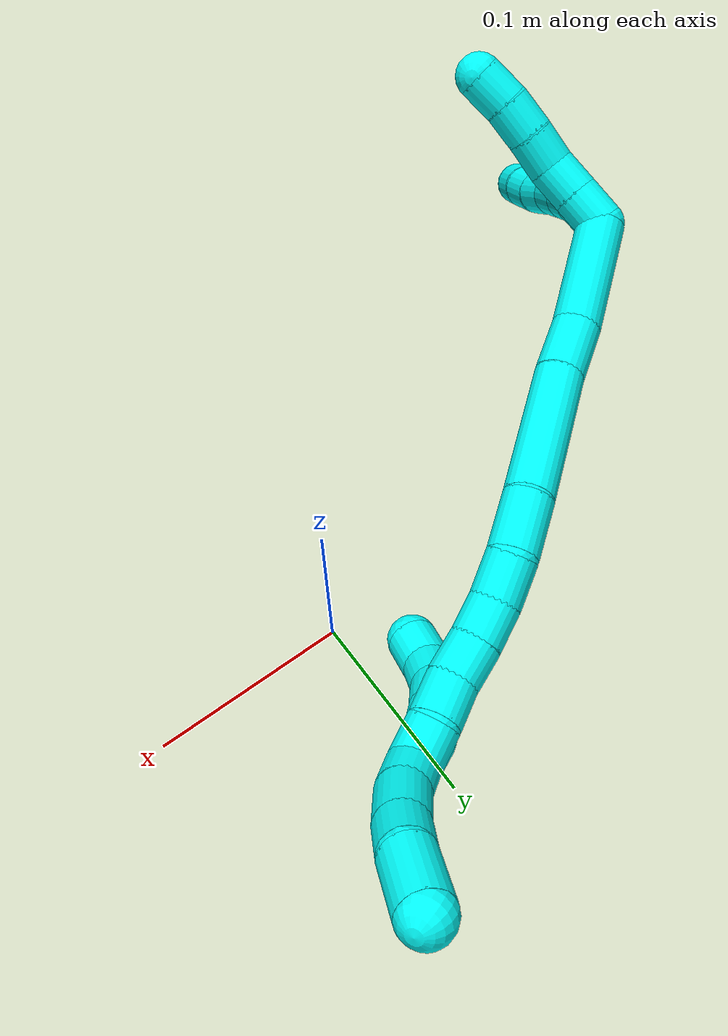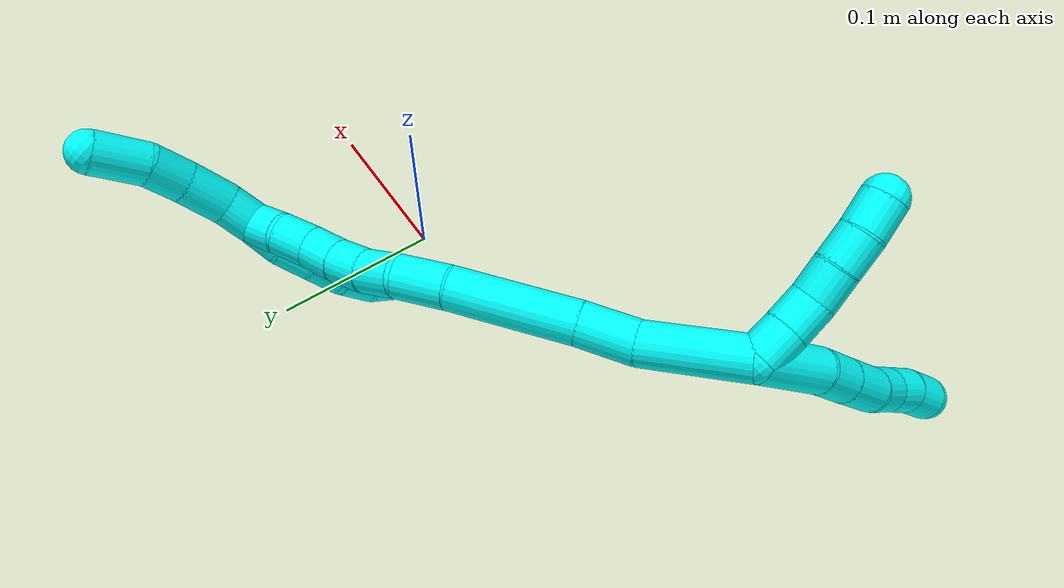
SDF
<sdf version="1.7">
 <world name="default">
  <model name="3">
   <static>0</static>
   <link name="3">
    <collision name="collision-cylinder-e_1_2_8">
     <pose>-0.010146 0.004072 0.0177 -0.226146 -0.509456 0.05912</pose>
     <geometry><cylinder><radius>0.0125</radius><length>0.041608</length></cylinder></geometry>
     <surface>
      <friction><ode><mu>1.16</mu><mu2>1.16</mu2><slip1>0</slip1><slip2>0</slip2></ode></friction>
      <contact><ode><kp>1e+06</kp><kd>1</kd><max_vel>0</max_vel><min_depth>0.001</min_depth></ode></contact>
     </surface>
    </collision>
    <visual name="visual-cylinder-e_1_2_8">
     <pose>-0.010146 0.004072 0.0177 -0.226146 -0.509456 0.05912</pose>
     <geometry><cylinder><radius>0.0125</radius><length>0.041608</length></cylinder></geometry>
     <material><ambient>0.003922 1 0.996078 1</ambient></material>
    </visual>
    <collision name="collision-cylinder-e_2_8_9">
     <pose>-0.024258 0.011783 0.04478 -0.369959 -0.375421 0.071055</pose>
     <geometry><cylinder><radius>0.0125</radius><length>0.02163</length></cylinder></geometry>
     <surface>
      <friction><ode><mu>1.16</mu><mu2>1.16</mu2><slip1>0</slip1><slip2>0</slip2></ode></friction>
      <contact><ode><kp>1e+06</kp><kd>1</kd><max_vel>0</max_vel><min_depth>0.001</min_depth></ode></contact>
     </surface>
    </collision>
    <visual name="visual-cylinder-e_2_8_9">
     <pose>-0.024258 0.011783 0.04478 -0.369959 -0.375421 0.071055</pose>
     <geometry><cylinder><radius>0.0125</radius><length>0.02163</length></cylinder></geometry>
     <material><ambient>0.003922 1 0.996078 1</ambient></material>
    </visual>
    <collision name="collision-cylinder-e_3_9_10">
     <pose>-0.033251 0.020228 0.065568 -0.398853 -0.385796 0.078915</pose>
     <geometry><cylinder><radius>0.0125</radius><length>0.026721</length></cylinder></geometry>
     <surface>
      <friction><ode><mu>1.16</mu><mu2>1.16</mu2><slip1>0</slip1><slip2>0</slip2></ode></friction>
      <contact><ode><kp>1e+06</kp><kd>1</kd><max_vel>0</max_vel><min_depth>0.001</min_depth></ode></contact>
     </surface>
    </collision>
    <visual name="visual-cylinder-e_3_9_10">
     <pose>-0.033251 0.020228 0.065568 -0.398853 -0.385796 0.078915</pose>
     <geometry><cylinder><radius>0.0125</radius><length>0.026721</length></cylinder></geometry>
     <material><ambient>0.003922 1 0.996078 1</ambient></material>
    </visual>
    <collision name="collision-cylinder-e_4_10_11">
     <pose>-0.043207 0.029767 0.0843 -0.573539 -0.514432 0.154832</pose>
     <geometry><cylinder><radius>0.0125</radius><length>0.020034</length></cylinder></geometry>
     <surface>
      <friction><ode><mu>1.16</mu><mu2>1.16</mu2><slip1>0</slip1><slip2>0</slip2></ode></friction>
      <contact><ode><kp>1e+06</kp><kd>1</kd><max_vel>0</max_vel><min_depth>0.001</min_depth></ode></contact>
     </surface>
    </collision>
    <visual name="visual-cylinder-e_4_10_11">
     <pose>-0.043207 0.029767 0.0843 -0.573539 -0.514432 0.154832</pose>
     <geometry><cylinder><radius>0.0125</radius><length>0.020034</length></cylinder></geometry>
     <material><ambient>0.003922 1 0.996078 1</ambient></material>
    </visual>
    <collision name="collision-cylinder-e_5_11_12">
     <pose>-0.053445 0.038006 0.099342 -0.426526 -0.559604 0.12429</pose>
     <geometry><cylinder><radius>0.0125</radius><length>0.020005</length></cylinder></geometry>
     <surface>
      <friction><ode><mu>1.16</mu><mu2>1.16</mu2><slip1>0</slip1><slip2>0</slip2></ode></friction>
      <contact><ode><kp>1e+06</kp><kd>1</kd><max_vel>0</max_vel><min_depth>0.001</min_depth></ode></contact>
     </surface>
    </collision>
    <visual name="visual-cylinder-e_5_11_12">
     <pose>-0.053445 0.038006 0.099342 -0.426526 -0.559604 0.12429</pose>
     <geometry><cylinder><radius>0.0125</radius><length>0.020005</length></cylinder></geometry>
     <material><ambient>0.003922 1 0.996078 1</ambient></material>
    </visual>
    <collision name="collision-cylinder-e_6_12_6">
     <pose>-0.062501 0.044742 0.115752 -0.355715 -0.383907 0.069842</pose>
     <geometry><cylinder><radius>0.0125</radius><length>0.020003</length></cylinder></geometry>
     <surface>
      <friction><ode><mu>1.16</mu><mu2>1.16</mu2><slip1>0</slip1><slip2>0</slip2></ode></friction>
      <contact><ode><kp>1e+06</kp><kd>1</kd><max_vel>0</max_vel><min_depth>0.001</min_depth></ode></contact>
     </surface>
    </collision>
    <visual name="visual-cylinder-e_6_12_6">
     <pose>-0.062501 0.044742 0.115752 -0.355715 -0.383907 0.069842</pose>
     <geometry><cylinder><radius>0.0125</radius><length>0.020003</length></cylinder></geometry>
     <material><ambient>0.003922 1 0.996078 1</ambient></material>
    </visual>
    <collision name="collision-cylinder-e_1_2_13">
     <pose>-0.009855 -0.001596 0.000573 1.22592 -1.40037 -1.06996</pose>
     <geometry><cylinder><radius>0.0125</radius><length>0.02</length></cylinder></geometry>
     <surface>
      <friction><ode><mu>1.16</mu><mu2>1.16</mu2><slip1>0</slip1><slip2>0</slip2></ode></friction>
      <contact><ode><kp>1e+06</kp><kd>1</kd><max_vel>0</max_vel><min_depth>0.001</min_depth></ode></contact>
     </surface>
    </collision>
    <visual name="visual-cylinder-e_1_2_13">
     <pose>-0.009855 -0.001596 0.000573 1.22592 -1.40037 -1.06996</pose>
     <geometry><cylinder><radius>0.0125</radius><length>0.02</length></cylinder></geometry>
     <material><ambient>0.003922 1 0.996078 1</ambient></material>
    </visual>
    <collision name="collision-cylinder-e_2_13_14">
     <pose>-0.029569 -0.004857 0.001321 1.46641 -1.40264 -1.30061</pose>
     <geometry><cylinder><radius>0.0125</radius><length>0.02</length></cylinder></geometry>
     <surface>
      <friction><ode><mu>1.16</mu><mu2>1.16</mu2><slip1>0</slip1><slip2>0</slip2></ode></friction>
      <contact><ode><kp>1e+06</kp><kd>1</kd><max_vel>0</max_vel><min_depth>0.001</min_depth></ode></contact>
     </surface>
    </collision>
    <visual name="visual-cylinder-e_2_13_14">
     <pose>-0.029569 -0.004857 0.001321 1.46641 -1.40264 -1.30061</pose>
     <geometry><cylinder><radius>0.0125</radius><length>0.02</length></cylinder></geometry>
     <material><ambient>0.003922 1 0.996078 1</ambient></material>
    </visual>
    <collision name="collision-cylinder-e_3_14_15">
     <pose>-0.048611 -0.009984 -0.000426 2.07757 -1.16366 -1.68168</pose>
     <geometry><cylinder><radius>0.0125</radius><length>0.02</length></cylinder></geometry>
     <surface>
      <friction><ode><mu>1.16</mu><mu2>1.16</mu2><slip1>0</slip1><slip2>0</slip2></ode></friction>
      <contact><ode><kp>1e+06</kp><kd>1</kd><max_vel>0</max_vel><min_depth>0.001</min_depth></ode></contact>
     </surface>
    </collision>
    <visual name="visual-cylinder-e_3_14_15">
     <pose>-0.048611 -0.009984 -0.000426 2.07757 -1.16366 -1.68168</pose>
     <geometry><cylinder><radius>0.0125</radius><length>0.02</length></cylinder></geometry>
     <material><ambient>0.003922 1 0.996078 1</ambient></material>
    </visual>
    <collision name="collision-cylinder-e_4_15_16">
     <pose>-0.06726 -0.016293 -0.003858 2.05846 -1.24267 -1.74398</pose>
     <geometry><cylinder><radius>0.0125</radius><length>0.02</length></cylinder></geometry>
     <surface>
      <friction><ode><mu>1.16</mu><mu2>1.16</mu2><slip1>0</slip1><slip2>0</slip2></ode></friction>
      <contact><ode><kp>1e+06</kp><kd>1</kd><max_vel>0</max_vel><min_depth>0.001</min_depth></ode></contact>
     </surface>
    </collision>
    <visual name="visual-cylinder-e_4_15_16">
     <pose>-0.06726 -0.016293 -0.003858 2.05846 -1.24267 -1.74398</pose>
     <geometry><cylinder><radius>0.0125</radius><length>0.02</length></cylinder></geometry>
     <material><ambient>0.003922 1 0.996078 1</ambient></material>
    </visual>
    <collision name="collision-cylinder-e_5_16_5">
     <pose>-0.086462 -0.020718 -0.00702 2.37883 -1.34026 -2.20467</pose>
     <geometry><cylinder><radius>0.0125</radius><length>0.02</length></cylinder></geometry>
     <surface>
      <friction><ode><mu>1.16</mu><mu2>1.16</mu2><slip1>0</slip1><slip2>0</slip2></ode></friction>
      <contact><ode><kp>1e+06</kp><kd>1</kd><max_vel>0</max_vel><min_depth>0.001</min_depth></ode></contact>
     </surface>
    </collision>
    <visual name="visual-cylinder-e_5_16_5">
     <pose>-0.086462 -0.020718 -0.00702 2.37883 -1.34026 -2.20467</pose>
     <geometry><cylinder><radius>0.0125</radius><length>0.02</length></cylinder></geometry>
     <material><ambient>0.003922 1 0.996078 1</ambient></material>
    </visual>
    <collision name="collision-cylinder-e_1_2_17">
     <pose>0.012849 0.019351 -0.019453 -2.35884 0.437948 -0.989152</pose>
     <geometry><cylinder><radius>0.0125</radius><length>0.060597</length></cylinder></geometry>
     <surface>
      <friction><ode><mu>1.16</mu><mu2>1.16</mu2><slip1>0</slip1><slip2>0</slip2></ode></friction>
      <contact><ode><kp>1e+06</kp><kd>1</kd><max_vel>0</max_vel><min_depth>0.001</min_depth></ode></contact>
     </surface>
    </collision>
    <visual name="visual-cylinder-e_1_2_17">
     <pose>0.012849 0.019351 -0.019453 -2.35884 0.437948 -0.989152</pose>
     <geometry><cylinder><radius>0.0125</radius><length>0.060597</length></cylinder></geometry>
     <material><ambient>0.003922 1 0.996078 1</ambient></material>
    </visual>
    <collision name="collision-cylinder-e_2_17_18">
     <pose>0.030538 0.046657 -0.051961 -2.59429 0.306651 -1.00654</pose>
     <geometry><cylinder><radius>0.0125</radius><length>0.032071</length></cylinder></geometry>
     <surface>
      <friction><ode><mu>1.16</mu><mu2>1.16</mu2><slip1>0</slip1><slip2>0</slip2></ode></friction>
      <contact><ode><kp>1e+06</kp><kd>1</kd><max_vel>0</max_vel><min_depth>0.001</min_depth></ode></contact>
     </surface>
    </collision>
    <visual name="visual-cylinder-e_2_17_18">
     <pose>0.030538 0.046657 -0.051961 -2.59429 0.306651 -1.00654</pose>
     <geometry><cylinder><radius>0.0125</radius><length>0.032071</length></cylinder></geometry>
     <material><ambient>0.003922 1 0.996078 1</ambient></material>
    </visual>
    <collision name="collision-cylinder-e_3_18_19">
     <pose>0.04858 0.071207 -0.094284 -2.6258 0.373888 -1.24424</pose>
     <geometry><cylinder><radius>0.0125</radius><length>0.072285</length></cylinder></geometry>
     <surface>
      <friction><ode><mu>1.16</mu><mu2>1.16</mu2><slip1>0</slip1><slip2>0</slip2></ode></friction>
      <contact><ode><kp>1e+06</kp><kd>1</kd><max_vel>0</max_vel><min_depth>0.001</min_depth></ode></contact>
     </surface>
    </collision>
    <visual name="visual-cylinder-e_3_18_19">
     <pose>0.04858 0.071207 -0.094284 -2.6258 0.373888 -1.24424</pose>
     <geometry><cylinder><radius>0.0125</radius><length>0.072285</length></cylinder></geometry>
     <material><ambient>0.003922 1 0.996078 1</ambient></material>
    </visual>
    <collision name="collision-cylinder-e_4_19_20">
     <pose>0.067433 0.096395 -0.134648 -2.48264 0.382915 -1.03138</pose>
     <geometry><cylinder><radius>0.0125</radius><length>0.03026</length></cylinder></geometry>
     <surface>
      <friction><ode><mu>1.16</mu><mu2>1.16</mu2><slip1>0</slip1><slip2>0</slip2></ode></friction>
      <contact><ode><kp>1e+06</kp><kd>1</kd><max_vel>0</max_vel><min_depth>0.001</min_depth></ode></contact>
     </surface>
    </collision>
    <visual name="visual-cylinder-e_4_19_20">
     <pose>0.067433 0.096395 -0.134648 -2.48264 0.382915 -1.03138</pose>
     <geometry><cylinder><radius>0.0125</radius><length>0.03026</length></cylinder></geometry>
     <material><ambient>0.003922 1 0.996078 1</ambient></material>
    </visual>
    <collision name="collision-cylinder-e_5_20_21">
     <pose>0.076797 0.113639 -0.152098 -2.20431 0.332818 -0.640689</pose>
     <geometry><cylinder><radius>0.0125</radius><length>0.022714</length></cylinder></geometry>
     <surface>
      <friction><ode><mu>1.16</mu><mu2>1.16</mu2><slip1>0</slip1><slip2>0</slip2></ode></friction>
      <contact><ode><kp>1e+06</kp><kd>1</kd><max_vel>0</max_vel><min_depth>0.001</min_depth></ode></contact>
     </surface>
    </collision>
    <visual name="visual-cylinder-e_5_20_21">
     <pose>0.076797 0.113639 -0.152098 -2.20431 0.332818 -0.640689</pose>
     <geometry><cylinder><radius>0.0125</radius><length>0.022714</length></cylinder></geometry>
     <material><ambient>0.003922 1 0.996078 1</ambient></material>
    </visual>
    <collision name="collision-cylinder-e_6_21_22">
     <pose>0.082708 0.129258 -0.1654 -2.35475 0.220019 -0.520179</pose>
     <geometry><cylinder><radius>0.0125</radius><length>0.020166</length></cylinder></geometry>
     <surface>
      <friction><ode><mu>1.16</mu><mu2>1.16</mu2><slip1>0</slip1><slip2>0</slip2></ode></friction>
      <contact><ode><kp>1e+06</kp><kd>1</kd><max_vel>0</max_vel><min_depth>0.001</min_depth></ode></contact>
     </surface>
    </collision>
    <visual name="visual-cylinder-e_6_21_22">
     <pose>0.082708 0.129258 -0.1654 -2.35475 0.220019 -0.520179</pose>
     <geometry><cylinder><radius>0.0125</radius><length>0.020166</length></cylinder></geometry>
     <material><ambient>0.003922 1 0.996078 1</ambient></material>
    </visual>
    <collision name="collision-cylinder-e_7_22_23">
     <pose>0.086333 0.14318 -0.179808 -2.39123 0.138793 -0.349383</pose>
     <geometry><cylinder><radius>0.0125</radius><length>0.020595</length></cylinder></geometry>
     <surface>
      <friction><ode><mu>1.16</mu><mu2>1.16</mu2><slip1>0</slip1><slip2>0</slip2></ode></friction>
      <contact><ode><kp>1e+06</kp><kd>1</kd><max_vel>0</max_vel><min_depth>0.001</min_depth></ode></contact>
     </surface>
    </collision>
    <visual name="visual-cylinder-e_7_22_23">
     <pose>0.086333 0.14318 -0.179808 -2.39123 0.138793 -0.349383</pose>
     <geometry><cylinder><radius>0.0125</radius><length>0.020595</length></cylinder></geometry>
     <material><ambient>0.003922 1 0.996078 1</ambient></material>
    </visual>
    <collision name="collision-cylinder-e_8_23_24">
     <pose>0.0902 0.155294 -0.196186 -2.61709 0.232771 -0.821535</pose>
     <geometry><cylinder><radius>0.0125</radius><length>0.02118</length></cylinder></geometry>
     <surface>
      <friction><ode><mu>1.16</mu><mu2>1.16</mu2><slip1>0</slip1><slip2>0</slip2></ode></friction>
      <contact><ode><kp>1e+06</kp><kd>1</kd><max_vel>0</max_vel><min_depth>0.001</min_depth></ode></contact>
     </surface>
    </collision>
    <visual name="visual-cylinder-e_8_23_24">
     <pose>0.0902 0.155294 -0.196186 -2.61709 0.232771 -0.821535</pose>
     <geometry><cylinder><radius>0.0125</radius><length>0.02118</length></cylinder></geometry>
     <material><ambient>0.003922 1 0.996078 1</ambient></material>
    </visual>
    <collision name="collision-cylinder-e_9_24_1">
     <pose>0.094861 0.167217 -0.212225 -2.38185 0.222148 -0.544809</pose>
     <geometry><cylinder><radius>0.0125</radius><length>0.020133</length></cylinder></geometry>
     <surface>
      <friction><ode><mu>1.16</mu><mu2>1.16</mu2><slip1>0</slip1><slip2>0</slip2></ode></friction>
      <contact><ode><kp>1e+06</kp><kd>1</kd><max_vel>0</max_vel><min_depth>0.001</min_depth></ode></contact>
     </surface>
    </collision>
    <visual name="visual-cylinder-e_9_24_1">
     <pose>0.094861 0.167217 -0.212225 -2.38185 0.222148 -0.544809</pose>
     <geometry><cylinder><radius>0.0125</radius><length>0.020133</length></cylinder></geometry>
     <material><ambient>0.003922 1 0.996078 1</ambient></material>
    </visual>
    <collision name="collision-cylinder-e_1_1_25">
     <pose>0.098139 0.172859 -0.229297 3.02942 0.105481 1.50922</pose>
     <geometry><cylinder><radius>0.0125</radius><length>0.020144</length></cylinder></geometry>
     <surface>
      <friction><ode><mu>1.16</mu><mu2>1.16</mu2><slip1>0</slip1><slip2>0</slip2></ode></friction>
      <contact><ode><kp>1e+06</kp><kd>1</kd><max_vel>0</max_vel><min_depth>0.001</min_depth></ode></contact>
     </surface>
    </collision>
    <visual name="visual-cylinder-e_1_1_25">
     <pose>0.098139 0.172859 -0.229297 3.02942 0.105481 1.50922</pose>
     <geometry><cylinder><radius>0.0125</radius><length>0.020144</length></cylinder></geometry>
     <material><ambient>0.003922 1 0.996078 1</ambient></material>
    </visual>
    <collision name="collision-cylinder-e_2_25_26">
     <pose>0.102181 0.167894 -0.251766 2.84361 0.223897 1.28565</pose>
     <geometry><cylinder><radius>0.0125</radius><length>0.026855</length></cylinder></geometry>
     <surface>
      <friction><ode><mu>1.16</mu><mu2>1.16</mu2><slip1>0</slip1><slip2>0</slip2></ode></friction>
      <contact><ode><kp>1e+06</kp><kd>1</kd><max_vel>0</max_vel><min_depth>0.001</min_depth></ode></contact>
     </surface>
    </collision>
    <visual name="visual-cylinder-e_2_25_26">
     <pose>0.102181 0.167894 -0.251766 2.84361 0.223897 1.28565</pose>
     <geometry><cylinder><radius>0.0125</radius><length>0.026855</length></cylinder></geometry>
     <material><ambient>0.003922 1 0.996078 1</ambient></material>
    </visual>
    <collision name="collision-cylinder-e_3_26_27">
     <pose>0.108139 0.159801 -0.274149 2.73499 0.270242 1.16601</pose>
     <geometry><cylinder><radius>0.0125</radius><length>0.022297</length></cylinder></geometry>
     <surface>
      <friction><ode><mu>1.16</mu><mu2>1.16</mu2><slip1>0</slip1><slip2>0</slip2></ode></friction>
      <contact><ode><kp>1e+06</kp><kd>1</kd><max_vel>0</max_vel><min_depth>0.001</min_depth></ode></contact>
     </surface>
    </collision>
    <visual name="visual-cylinder-e_3_26_27">
     <pose>0.108139 0.159801 -0.274149 2.73499 0.270242 1.16601</pose>
     <geometry><cylinder><radius>0.0125</radius><length>0.022297</length></cylinder></geometry>
     <material><ambient>0.003922 1 0.996078 1</ambient></material>
    </visual>
    <collision name="collision-cylinder-e_4_27_4">
     <pose>0.118692 0.151527 -0.296747 2.83532 0.516144 2.08336</pose>
     <geometry><cylinder><radius>0.0125</radius><length>0.030704</length></cylinder></geometry>
     <surface>
      <friction><ode><mu>1.16</mu><mu2>1.16</mu2><slip1>0</slip1><slip2>0</slip2></ode></friction>
      <contact><ode><kp>1e+06</kp><kd>1</kd><max_vel>0</max_vel><min_depth>0.001</min_depth></ode></contact>
     </surface>
    </collision>
    <visual name="visual-cylinder-e_4_27_4">
     <pose>0.118692 0.151527 -0.296747 2.83532 0.516144 2.08336</pose>
     <geometry><cylinder><radius>0.0125</radius><length>0.030704</length></cylinder></geometry>
     <material><ambient>0.003922 1 0.996078 1</ambient></material>
    </visual>
    <collision name="collision-cylinder-e_1_1_28">
     <pose>0.096676 0.17364 -0.209357 0.034055 -0.040273 -0.000686</pose>
     <geometry><cylinder><radius>0.0125</radius><length>0.02</length></cylinder></geometry>
     <surface>
      <friction><ode><mu>1.16</mu><mu2>1.16</mu2><slip1>0</slip1><slip2>0</slip2></ode></friction>
      <contact><ode><kp>1e+06</kp><kd>1</kd><max_vel>0</max_vel><min_depth>0.001</min_depth></ode></contact>
     </surface>
    </collision>
    <visual name="visual-cylinder-e_1_1_28">
     <pose>0.096676 0.17364 -0.209357 0.034055 -0.040273 -0.000686</pose>
     <geometry><cylinder><radius>0.0125</radius><length>0.02</length></cylinder></geometry>
     <material><ambient>0.003922 1 0.996078 1</ambient></material>
    </visual>
    <collision name="collision-cylinder-e_2_28_29">
     <pose>0.093837 0.173222 -0.189673 0.008036 -0.246147 -0.000994</pose>
     <geometry><cylinder><radius>0.0125</radius><length>0.02</length></cylinder></geometry>
     <surface>
      <friction><ode><mu>1.16</mu><mu2>1.16</mu2><slip1>0</slip1><slip2>0</slip2></ode></friction>
      <contact><ode><kp>1e+06</kp><kd>1</kd><max_vel>0</max_vel><min_depth>0.001</min_depth></ode></contact>
     </surface>
    </collision>
    <visual name="visual-cylinder-e_2_28_29">
     <pose>0.093837 0.173222 -0.189673 0.008036 -0.246147 -0.000994</pose>
     <geometry><cylinder><radius>0.0125</radius><length>0.02</length></cylinder></geometry>
     <material><ambient>0.003922 1 0.996078 1</ambient></material>
    </visual>
    <collision name="collision-cylinder-e_3_29_30">
     <pose>0.08889 0.175053 -0.170485 -0.198475 -0.253696 0.025394</pose>
     <geometry><cylinder><radius>0.0125</radius><length>0.02</length></cylinder></geometry>
     <surface>
      <friction><ode><mu>1.16</mu><mu2>1.16</mu2><slip1>0</slip1><slip2>0</slip2></ode></friction>
      <contact><ode><kp>1e+06</kp><kd>1</kd><max_vel>0</max_vel><min_depth>0.001</min_depth></ode></contact>
     </surface>
    </collision>
    <visual name="visual-cylinder-e_3_29_30">
     <pose>0.08889 0.175053 -0.170485 -0.198475 -0.253696 0.025394</pose>
     <geometry><cylinder><radius>0.0125</radius><length>0.02</length></cylinder></geometry>
     <material><ambient>0.003922 1 0.996078 1</ambient></material>
    </visual>
    <collision name="collision-cylinder-e_4_30_31">
     <pose>0.082172 0.180136 -0.152497 -0.357495 -0.434386 0.079699</pose>
     <geometry><cylinder><radius>0.0125</radius><length>0.02</length></cylinder></geometry>
     <surface>
      <friction><ode><mu>1.16</mu><mu2>1.16</mu2><slip1>0</slip1><slip2>0</slip2></ode></friction>
      <contact><ode><kp>1e+06</kp><kd>1</kd><max_vel>0</max_vel><min_depth>0.001</min_depth></ode></contact>
     </surface>
    </collision>
    <visual name="visual-cylinder-e_4_30_31">
     <pose>0.082172 0.180136 -0.152497 -0.357495 -0.434386 0.079699</pose>
     <geometry><cylinder><radius>0.0125</radius><length>0.02</length></cylinder></geometry>
     <material><ambient>0.003922 1 0.996078 1</ambient></material>
    </visual>
    <collision name="collision-cylinder-e_5_31_3">
     <pose>0.071057 0.185327 -0.137054 -0.282623 -0.762339 0.113903</pose>
     <geometry><cylinder><radius>0.0125</radius><length>0.02</length></cylinder></geometry>
     <surface>
      <friction><ode><mu>1.16</mu><mu2>1.16</mu2><slip1>0</slip1><slip2>0</slip2></ode></friction>
      <contact><ode><kp>1e+06</kp><kd>1</kd><max_vel>0</max_vel><min_depth>0.001</min_depth></ode></contact>
     </surface>
    </collision>
    <visual name="visual-cylinder-e_5_31_3">
     <pose>0.071057 0.185327 -0.137054 -0.282623 -0.762339 0.113903</pose>
     <geometry><cylinder><radius>0.0125</radius><length>0.02</length></cylinder></geometry>
     <material><ambient>0.003922 1 0.996078 1</ambient></material>
    </visual>
    <collision name="collision-sphere-3">
     <pose>0.064151 0.187344 -0.130109 0 -0 0</pose>
     <geometry><sphere><radius>0.0125</radius></sphere></geometry>
     <surface>
      <friction><ode><mu>1.16</mu><mu2>1.16</mu2><slip1>0</slip1><slip2>0</slip2></ode></friction>
      <contact><ode><kp>1e+06</kp><kd>1</kd><max_vel>0</max_vel><min_depth>0.001</min_depth></ode></contact>
     </surface>
    </collision>
    <visual name="visual-sphere-3">
     <pose>0.064151 0.187344 -0.130109 0 -0 0</pose>
     <geometry><sphere><radius>0.0125</radius></sphere></geometry>
     <material><ambient>0.003922 1 0.996078 1</ambient></material>
    </visual>
    <collision name="collision-sphere-31">
     <pose>0.077964 0.18331 -0.144 0 -0 0</pose>
     <geometry><sphere><radius>0.0125</radius></sphere></geometry>
     <surface>
      <friction><ode><mu>1.16</mu><mu2>1.16</mu2><slip1>0</slip1><slip2>0</slip2></ode></friction>
      <contact><ode><kp>1e+06</kp><kd>1</kd><max_vel>0</max_vel><min_depth>0.001</min_depth></ode></contact>
     </surface>
    </collision>
    <visual name="visual-sphere-31">
     <pose>0.077964 0.18331 -0.144 0 -0 0</pose>
     <geometry><sphere><radius>0.0125</radius></sphere></geometry>
     <material><ambient>0.003922 1 0.996078 1</ambient></material>
    </visual>
    <collision name="collision-sphere-30">
     <pose>0.086381 0.176961 -0.160995 0 -0 0</pose>
     <geometry><sphere><radius>0.0125</radius></sphere></geometry>
     <surface>
      <friction><ode><mu>1.16</mu><mu2>1.16</mu2><slip1>0</slip1><slip2>0</slip2></ode></friction>
      <contact><ode><kp>1e+06</kp><kd>1</kd><max_vel>0</max_vel><min_depth>0.001</min_depth></ode></contact>
     </surface>
    </collision>
    <visual name="visual-sphere-30">
     <pose>0.086381 0.176961 -0.160995 0 -0 0</pose>
     <geometry><sphere><radius>0.0125</radius></sphere></geometry>
     <material><ambient>0.003922 1 0.996078 1</ambient></material>
    </visual>
    <collision name="collision-sphere-29">
     <pose>0.0914 0.173144 -0.179975 0 -0 0</pose>
     <geometry><sphere><radius>0.0125</radius></sphere></geometry>
     <surface>
      <friction><ode><mu>1.16</mu><mu2>1.16</mu2><slip1>0</slip1><slip2>0</slip2></ode></friction>
      <contact><ode><kp>1e+06</kp><kd>1</kd><max_vel>0</max_vel><min_depth>0.001</min_depth></ode></contact>
     </surface>
    </collision>
    <visual name="visual-sphere-29">
     <pose>0.0914 0.173144 -0.179975 0 -0 0</pose>
     <geometry><sphere><radius>0.0125</radius></sphere></geometry>
     <material><ambient>0.003922 1 0.996078 1</ambient></material>
    </visual>
    <collision name="collision-sphere-28">
     <pose>0.096274 0.1733 -0.199371 0 -0 0</pose>
     <geometry><sphere><radius>0.0125</radius></sphere></geometry>
     <surface>
      <friction><ode><mu>1.16</mu><mu2>1.16</mu2><slip1>0</slip1><slip2>0</slip2></ode></friction>
      <contact><ode><kp>1e+06</kp><kd>1</kd><max_vel>0</max_vel><min_depth>0.001</min_depth></ode></contact>
     </surface>
    </collision>
    <visual name="visual-sphere-28">
     <pose>0.096274 0.1733 -0.199371 0 -0 0</pose>
     <geometry><sphere><radius>0.0125</radius></sphere></geometry>
     <material><ambient>0.003922 1 0.996078 1</ambient></material>
    </visual>
    <collision name="collision-sphere-4">
     <pose>0.126268 0.147501 -0.309478 0 -0 0</pose>
     <geometry><sphere><radius>0.0125</radius></sphere></geometry>
     <surface>
      <friction><ode><mu>1.16</mu><mu2>1.16</mu2><slip1>0</slip1><slip2>0</slip2></ode></friction>
      <contact><ode><kp>1e+06</kp><kd>1</kd><max_vel>0</max_vel><min_depth>0.001</min_depth></ode></contact>
     </surface>
    </collision>
    <visual name="visual-sphere-4">
     <pose>0.126268 0.147501 -0.309478 0 -0 0</pose>
     <geometry><sphere><radius>0.0125</radius></sphere></geometry>
     <material><ambient>0.003922 1 0.996078 1</ambient></material>
    </visual>
    <collision name="collision-sphere-27">
     <pose>0.111115 0.155552 -0.284017 0 -0 0</pose>
     <geometry><sphere><radius>0.0125</radius></sphere></geometry>
     <surface>
      <friction><ode><mu>1.16</mu><mu2>1.16</mu2><slip1>0</slip1><slip2>0</slip2></ode></friction>
      <contact><ode><kp>1e+06</kp><kd>1</kd><max_vel>0</max_vel><min_depth>0.001</min_depth></ode></contact>
     </surface>
    </collision>
    <visual name="visual-sphere-27">
     <pose>0.111115 0.155552 -0.284017 0 -0 0</pose>
     <geometry><sphere><radius>0.0125</radius></sphere></geometry>
     <material><ambient>0.003922 1 0.996078 1</ambient></material>
    </visual>
    <collision name="collision-sphere-26">
     <pose>0.105162 0.16405 -0.264281 0 -0 0</pose>
     <geometry><sphere><radius>0.0125</radius></sphere></geometry>
     <surface>
      <friction><ode><mu>1.16</mu><mu2>1.16</mu2><slip1>0</slip1><slip2>0</slip2></ode></friction>
      <contact><ode><kp>1e+06</kp><kd>1</kd><max_vel>0</max_vel><min_depth>0.001</min_depth></ode></contact>
     </surface>
    </collision>
    <visual name="visual-sphere-26">
     <pose>0.105162 0.16405 -0.264281 0 -0 0</pose>
     <geometry><sphere><radius>0.0125</radius></sphere></geometry>
     <material><ambient>0.003922 1 0.996078 1</ambient></material>
    </visual>
    <collision name="collision-sphere-25">
     <pose>0.0992 0.171738 -0.23925 0 -0 0</pose>
     <geometry><sphere><radius>0.0125</radius></sphere></geometry>
     <surface>
      <friction><ode><mu>1.16</mu><mu2>1.16</mu2><slip1>0</slip1><slip2>0</slip2></ode></friction>
      <contact><ode><kp>1e+06</kp><kd>1</kd><max_vel>0</max_vel><min_depth>0.001</min_depth></ode></contact>
     </surface>
    </collision>
    <visual name="visual-sphere-25">
     <pose>0.0992 0.171738 -0.23925 0 -0 0</pose>
     <geometry><sphere><radius>0.0125</radius></sphere></geometry>
     <material><ambient>0.003922 1 0.996078 1</ambient></material>
    </visual>
    <collision name="collision-sphere-1">
     <pose>0.097079 0.17398 -0.219344 0 -0 0</pose>
     <geometry><sphere><radius>0.0125</radius></sphere></geometry>
     <surface>
      <friction><ode><mu>1.16</mu><mu2>1.16</mu2><slip1>0</slip1><slip2>0</slip2></ode></friction>
      <contact><ode><kp>1e+06</kp><kd>1</kd><max_vel>0</max_vel><min_depth>0.001</min_depth></ode></contact>
     </surface>
    </collision>
    <visual name="visual-sphere-1">
     <pose>0.097079 0.17398 -0.219344 0 -0 0</pose>
     <geometry><sphere><radius>0.0125</radius></sphere></geometry>
     <material><ambient>0.003922 1 0.996078 1</ambient></material>
    </visual>
    <collision name="collision-sphere-24">
     <pose>0.092643 0.160455 -0.205105 0 -0 0</pose>
     <geometry><sphere><radius>0.0125</radius></sphere></geometry>
     <surface>
      <friction><ode><mu>1.16</mu><mu2>1.16</mu2><slip1>0</slip1><slip2>0</slip2></ode></friction>
      <contact><ode><kp>1e+06</kp><kd>1</kd><max_vel>0</max_vel><min_depth>0.001</min_depth></ode></contact>
     </surface>
    </collision>
    <visual name="visual-sphere-24">
     <pose>0.092643 0.160455 -0.205105 0 -0 0</pose>
     <geometry><sphere><radius>0.0125</radius></sphere></geometry>
     <material><ambient>0.003922 1 0.996078 1</ambient></material>
    </visual>
    <collision name="collision-sphere-23">
     <pose>0.087757 0.150134 -0.187267 0 -0 0</pose>
     <geometry><sphere><radius>0.0125</radius></sphere></geometry>
     <surface>
      <friction><ode><mu>1.16</mu><mu2>1.16</mu2><slip1>0</slip1><slip2>0</slip2></ode></friction>
      <contact><ode><kp>1e+06</kp><kd>1</kd><max_vel>0</max_vel><min_depth>0.001</min_depth></ode></contact>
     </surface>
    </collision>
    <visual name="visual-sphere-23">
     <pose>0.087757 0.150134 -0.187267 0 -0 0</pose>
     <geometry><sphere><radius>0.0125</radius></sphere></geometry>
     <material><ambient>0.003922 1 0.996078 1</ambient></material>
    </visual>
    <collision name="collision-sphere-22">
     <pose>0.084908 0.136226 -0.172348 0 -0 0</pose>
     <geometry><sphere><radius>0.0125</radius></sphere></geometry>
     <surface>
      <friction><ode><mu>1.16</mu><mu2>1.16</mu2><slip1>0</slip1><slip2>0</slip2></ode></friction>
      <contact><ode><kp>1e+06</kp><kd>1</kd><max_vel>0</max_vel><min_depth>0.001</min_depth></ode></contact>
     </surface>
    </collision>
    <visual name="visual-sphere-22">
     <pose>0.084908 0.136226 -0.172348 0 -0 0</pose>
     <geometry><sphere><radius>0.0125</radius></sphere></geometry>
     <material><ambient>0.003922 1 0.996078 1</ambient></material>
    </visual>
    <collision name="collision-sphere-21">
     <pose>0.080507 0.12229 -0.158452 0 -0 0</pose>
     <geometry><sphere><radius>0.0125</radius></sphere></geometry>
     <surface>
      <friction><ode><mu>1.16</mu><mu2>1.16</mu2><slip1>0</slip1><slip2>0</slip2></ode></friction>
      <contact><ode><kp>1e+06</kp><kd>1</kd><max_vel>0</max_vel><min_depth>0.001</min_depth></ode></contact>
     </surface>
    </collision>
    <visual name="visual-sphere-21">
     <pose>0.080507 0.12229 -0.158452 0 -0 0</pose>
     <geometry><sphere><radius>0.0125</radius></sphere></geometry>
     <material><ambient>0.003922 1 0.996078 1</ambient></material>
    </visual>
    <collision name="collision-sphere-12">
     <pose>-0.058755 0.041513 0.107059 0 -0 0</pose>
     <geometry><sphere><radius>0.0125</radius></sphere></geometry>
     <surface>
      <friction><ode><mu>1.16</mu><mu2>1.16</mu2><slip1>0</slip1><slip2>0</slip2></ode></friction>
      <contact><ode><kp>1e+06</kp><kd>1</kd><max_vel>0</max_vel><min_depth>0.001</min_depth></ode></contact>
     </surface>
    </collision>
    <visual name="visual-sphere-12">
     <pose>-0.058755 0.041513 0.107059 0 -0 0</pose>
     <geometry><sphere><radius>0.0125</radius></sphere></geometry>
     <material><ambient>0.003922 1 0.996078 1</ambient></material>
    </visual>
    <collision name="collision-sphere-11">
     <pose>-0.048136 0.034499 0.091625 0 -0 0</pose>
     <geometry><sphere><radius>0.0125</radius></sphere></geometry>
     <surface>
      <friction><ode><mu>1.16</mu><mu2>1.16</mu2><slip1>0</slip1><slip2>0</slip2></ode></friction>
      <contact><ode><kp>1e+06</kp><kd>1</kd><max_vel>0</max_vel><min_depth>0.001</min_depth></ode></contact>
     </surface>
    </collision>
    <visual name="visual-sphere-11">
     <pose>-0.048136 0.034499 0.091625 0 -0 0</pose>
     <geometry><sphere><radius>0.0125</radius></sphere></geometry>
     <material><ambient>0.003922 1 0.996078 1</ambient></material>
    </visual>
    <collision name="collision-sphere-10">
     <pose>-0.038278 0.025035 0.076975 0 -0 0</pose>
     <geometry><sphere><radius>0.0125</radius></sphere></geometry>
     <surface>
      <friction><ode><mu>1.16</mu><mu2>1.16</mu2><slip1>0</slip1><slip2>0</slip2></ode></friction>
      <contact><ode><kp>1e+06</kp><kd>1</kd><max_vel>0</max_vel><min_depth>0.001</min_depth></ode></contact>
     </surface>
    </collision>
    <visual name="visual-sphere-10">
     <pose>-0.038278 0.025035 0.076975 0 -0 0</pose>
     <geometry><sphere><radius>0.0125</radius></sphere></geometry>
     <material><ambient>0.003922 1 0.996078 1</ambient></material>
    </visual>
    <collision name="collision-sphere-9">
     <pose>-0.028223 0.015421 0.054161 0 -0 0</pose>
     <geometry><sphere><radius>0.0125</radius></sphere></geometry>
     <surface>
      <friction><ode><mu>1.16</mu><mu2>1.16</mu2><slip1>0</slip1><slip2>0</slip2></ode></friction>
      <contact><ode><kp>1e+06</kp><kd>1</kd><max_vel>0</max_vel><min_depth>0.001</min_depth></ode></contact>
     </surface>
    </collision>
    <visual name="visual-sphere-9">
     <pose>-0.028223 0.015421 0.054161 0 -0 0</pose>
     <geometry><sphere><radius>0.0125</radius></sphere></geometry>
     <material><ambient>0.003922 1 0.996078 1</ambient></material>
    </visual>
    <collision name="collision-sphere-2">
     <geometry><sphere><radius>0.0125</radius></sphere></geometry>
     <surface>
      <friction><ode><mu>1.16</mu><mu2>1.16</mu2><slip1>0</slip1><slip2>0</slip2></ode></friction>
      <contact><ode><kp>1e+06</kp><kd>1</kd><max_vel>0</max_vel><min_depth>0.001</min_depth></ode></contact>
     </surface>
    </collision>
    <visual name="visual-sphere-2">
     <geometry><sphere><radius>0.0125</radius></sphere></geometry>
     <material><ambient>0.003922 1 0.996078 1</ambient></material>
    </visual>
    <collision name="collision-sphere-19">
     <pose>0.06178 0.087802 -0.123552 0 -0 0</pose>
     <geometry><sphere><radius>0.0125</radius></sphere></geometry>
     <surface>
      <friction><ode><mu>1.16</mu><mu2>1.16</mu2><slip1>0</slip1><slip2>0</slip2></ode></friction>
      <contact><ode><kp>1e+06</kp><kd>1</kd><max_vel>0</max_vel><min_depth>0.001</min_depth></ode></contact>
     </surface>
    </collision>
    <visual name="visual-sphere-19">
     <pose>0.06178 0.087802 -0.123552 0 -0 0</pose>
     <geometry><sphere><radius>0.0125</radius></sphere></geometry>
     <material><ambient>0.003922 1 0.996078 1</ambient></material>
    </visual>
    <collision name="collision-sphere-8">
     <pose>-0.020292 0.008145 0.035399 0 -0 0</pose>
     <geometry><sphere><radius>0.0125</radius></sphere></geometry>
     <surface>
      <friction><ode><mu>1.16</mu><mu2>1.16</mu2><slip1>0</slip1><slip2>0</slip2></ode></friction>
      <contact><ode><kp>1e+06</kp><kd>1</kd><max_vel>0</max_vel><min_depth>0.001</min_depth></ode></contact>
     </surface>
    </collision>
    <visual name="visual-sphere-8">
     <pose>-0.020292 0.008145 0.035399 0 -0 0</pose>
     <geometry><sphere><radius>0.0125</radius></sphere></geometry>
     <material><ambient>0.003922 1 0.996078 1</ambient></material>
    </visual>
    <collision name="collision-sphere-6">
     <pose>-0.066247 0.047972 0.124445 0 -0 0</pose>
     <geometry><sphere><radius>0.0125</radius></sphere></geometry>
     <surface>
      <friction><ode><mu>1.16</mu><mu2>1.16</mu2><slip1>0</slip1><slip2>0</slip2></ode></friction>
      <contact><ode><kp>1e+06</kp><kd>1</kd><max_vel>0</max_vel><min_depth>0.001</min_depth></ode></contact>
     </surface>
    </collision>
    <visual name="visual-sphere-6">
     <pose>-0.066247 0.047972 0.124445 0 -0 0</pose>
     <geometry><sphere><radius>0.0125</radius></sphere></geometry>
     <material><ambient>0.003922 1 0.996078 1</ambient></material>
    </visual>
    <collision name="collision-sphere-13">
     <pose>-0.01971 -0.003192 0.001147 0 -0 0</pose>
     <geometry><sphere><radius>0.0125</radius></sphere></geometry>
     <surface>
      <friction><ode><mu>1.16</mu><mu2>1.16</mu2><slip1>0</slip1><slip2>0</slip2></ode></friction>
      <contact><ode><kp>1e+06</kp><kd>1</kd><max_vel>0</max_vel><min_depth>0.001</min_depth></ode></contact>
     </surface>
    </collision>
    <visual name="visual-sphere-13">
     <pose>-0.01971 -0.003192 0.001147 0 -0 0</pose>
     <geometry><sphere><radius>0.0125</radius></sphere></geometry>
     <material><ambient>0.003922 1 0.996078 1</ambient></material>
    </visual>
    <collision name="collision-sphere-14">
     <pose>-0.039428 -0.006522 0.001496 0 -0 0</pose>
     <geometry><sphere><radius>0.0125</radius></sphere></geometry>
     <surface>
      <friction><ode><mu>1.16</mu><mu2>1.16</mu2><slip1>0</slip1><slip2>0</slip2></ode></friction>
      <contact><ode><kp>1e+06</kp><kd>1</kd><max_vel>0</max_vel><min_depth>0.001</min_depth></ode></contact>
     </surface>
    </collision>
    <visual name="visual-sphere-14">
     <pose>-0.039428 -0.006522 0.001496 0 -0 0</pose>
     <geometry><sphere><radius>0.0125</radius></sphere></geometry>
     <material><ambient>0.003922 1 0.996078 1</ambient></material>
    </visual>
    <collision name="collision-sphere-15">
     <pose>-0.057793 -0.013446 -0.002348 0 -0 0</pose>
     <geometry><sphere><radius>0.0125</radius></sphere></geometry>
     <surface>
      <friction><ode><mu>1.16</mu><mu2>1.16</mu2><slip1>0</slip1><slip2>0</slip2></ode></friction>
      <contact><ode><kp>1e+06</kp><kd>1</kd><max_vel>0</max_vel><min_depth>0.001</min_depth></ode></contact>
     </surface>
    </collision>
    <visual name="visual-sphere-15">
     <pose>-0.057793 -0.013446 -0.002348 0 -0 0</pose>
     <geometry><sphere><radius>0.0125</radius></sphere></geometry>
     <material><ambient>0.003922 1 0.996078 1</ambient></material>
    </visual>
    <collision name="collision-sphere-16">
     <pose>-0.076726 -0.01914 -0.005368 0 -0 0</pose>
     <geometry><sphere><radius>0.0125</radius></sphere></geometry>
     <surface>
      <friction><ode><mu>1.16</mu><mu2>1.16</mu2><slip1>0</slip1><slip2>0</slip2></ode></friction>
      <contact><ode><kp>1e+06</kp><kd>1</kd><max_vel>0</max_vel><min_depth>0.001</min_depth></ode></contact>
     </surface>
    </collision>
    <visual name="visual-sphere-16">
     <pose>-0.076726 -0.01914 -0.005368 0 -0 0</pose>
     <geometry><sphere><radius>0.0125</radius></sphere></geometry>
     <material><ambient>0.003922 1 0.996078 1</ambient></material>
    </visual>
    <collision name="collision-sphere-5">
     <pose>-0.096197 -0.022297 -0.008672 0 -0 0</pose>
     <geometry><sphere><radius>0.0125</radius></sphere></geometry>
     <surface>
      <friction><ode><mu>1.16</mu><mu2>1.16</mu2><slip1>0</slip1><slip2>0</slip2></ode></friction>
      <contact><ode><kp>1e+06</kp><kd>1</kd><max_vel>0</max_vel><min_depth>0.001</min_depth></ode></contact>
     </surface>
    </collision>
    <visual name="visual-sphere-5">
     <pose>-0.096197 -0.022297 -0.008672 0 -0 0</pose>
     <geometry><sphere><radius>0.0125</radius></sphere></geometry>
     <material><ambient>0.003922 1 0.996078 1</ambient></material>
    </visual>
    <collision name="collision-sphere-17">
     <pose>0.025698 0.038702 -0.038907 0 -0 0</pose>
     <geometry><sphere><radius>0.0125</radius></sphere></geometry>
     <surface>
      <friction><ode><mu>1.16</mu><mu2>1.16</mu2><slip1>0</slip1><slip2>0</slip2></ode></friction>
      <contact><ode><kp>1e+06</kp><kd>1</kd><max_vel>0</max_vel><min_depth>0.001</min_depth></ode></contact>
     </surface>
    </collision>
    <visual name="visual-sphere-17">
     <pose>0.025698 0.038702 -0.038907 0 -0 0</pose>
     <geometry><sphere><radius>0.0125</radius></sphere></geometry>
     <material><ambient>0.003922 1 0.996078 1</ambient></material>
    </visual>
    <collision name="collision-sphere-18">
     <pose>0.035379 0.054612 -0.065015 0 -0 0</pose>
     <geometry><sphere><radius>0.0125</radius></sphere></geometry>
     <surface>
      <friction><ode><mu>1.16</mu><mu2>1.16</mu2><slip1>0</slip1><slip2>0</slip2></ode></friction>
      <contact><ode><kp>1e+06</kp><kd>1</kd><max_vel>0</max_vel><min_depth>0.001</min_depth></ode></contact>
     </surface>
    </collision>
    <visual name="visual-sphere-18">
     <pose>0.035379 0.054612 -0.065015 0 -0 0</pose>
     <geometry><sphere><radius>0.0125</radius></sphere></geometry>
     <material><ambient>0.003922 1 0.996078 1</ambient></material>
    </visual>
    <collision name="collision-sphere-20">
     <pose>0.073086 0.104988 -0.145744 0 -0 0</pose>
     <geometry><sphere><radius>0.0125</radius></sphere></geometry>
     <surface>
      <friction><ode><mu>1.16</mu><mu2>1.16</mu2><slip1>0</slip1><slip2>0</slip2></ode></friction>
      <contact><ode><kp>1e+06</kp><kd>1</kd><max_vel>0</max_vel><min_depth>0.001</min_depth></ode></contact>
     </surface>
    </collision>
    <visual name="visual-sphere-20">
     <pose>0.073086 0.104988 -0.145744 0 -0 0</pose>
     <geometry><sphere><radius>0.0125</radius></sphere></geometry>
     <material><ambient>0.003922 1 0.996078 1</ambient></material>
    </visual>
    <inertial>
     <pose>0.034526 0.082169 -0.089575 0 -0 0</pose>
     <mass>0.75</mass>
     <inertia><ixx>-2e-06</ixx><ixy>0</ixy><ixz>0</ixz><iyy>-1.6e-05</iyy><iyz>0</iyz><izz>-6e-05</izz></inertia>
    </inertial>
   </link>
   <pose>-0.223433 -0.066403 0.100609 -2.20385 0.285276 1.84526</pose>
  </model>
 </world>
</sdf>
